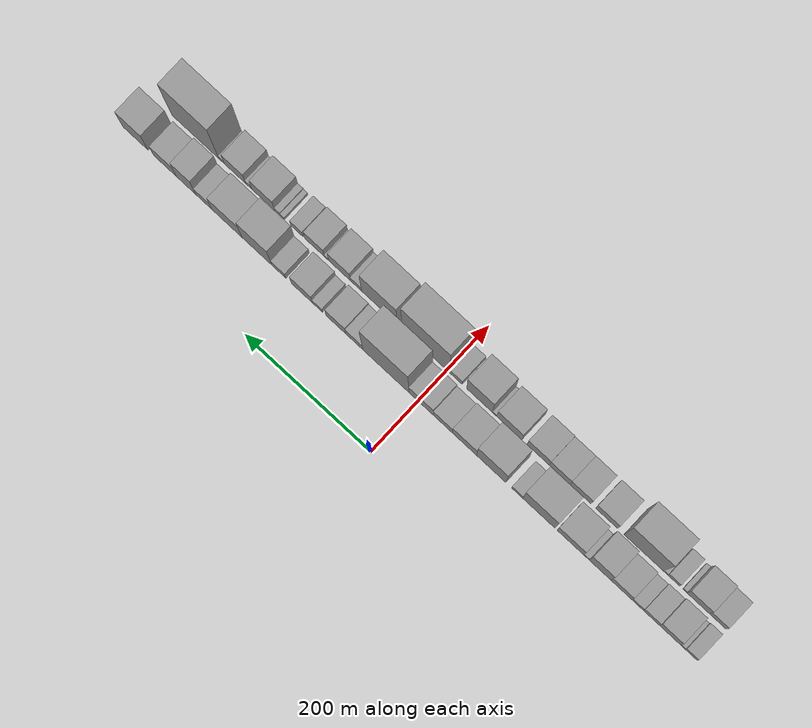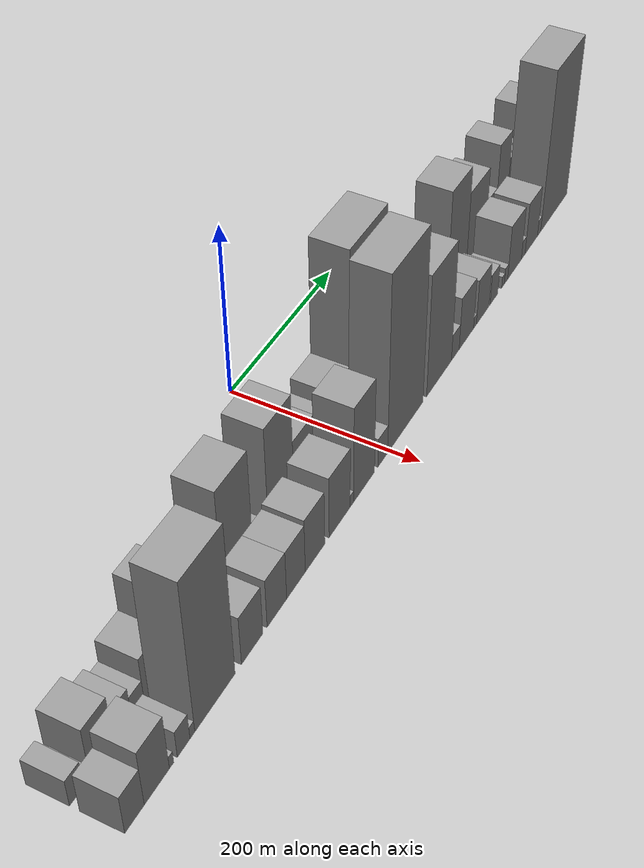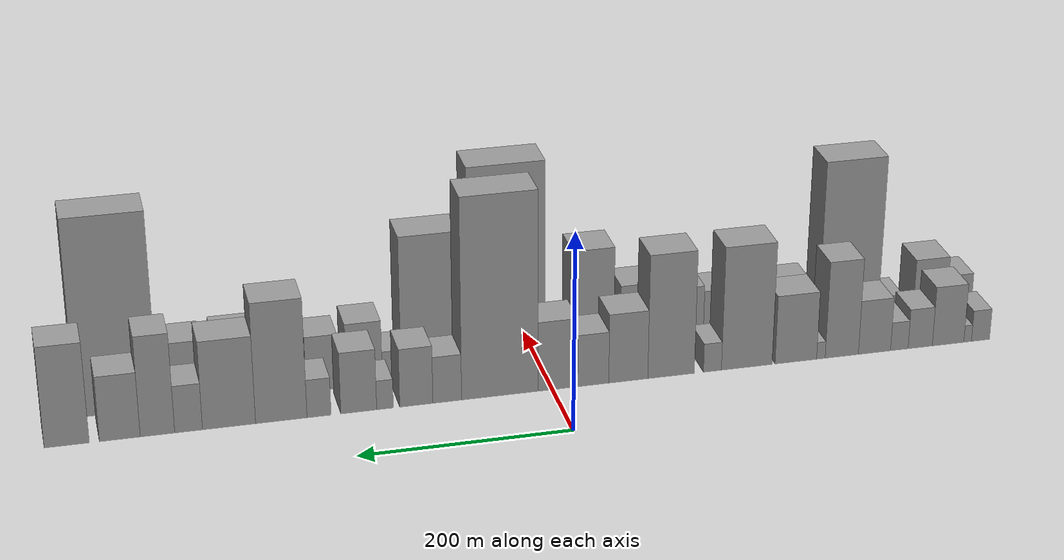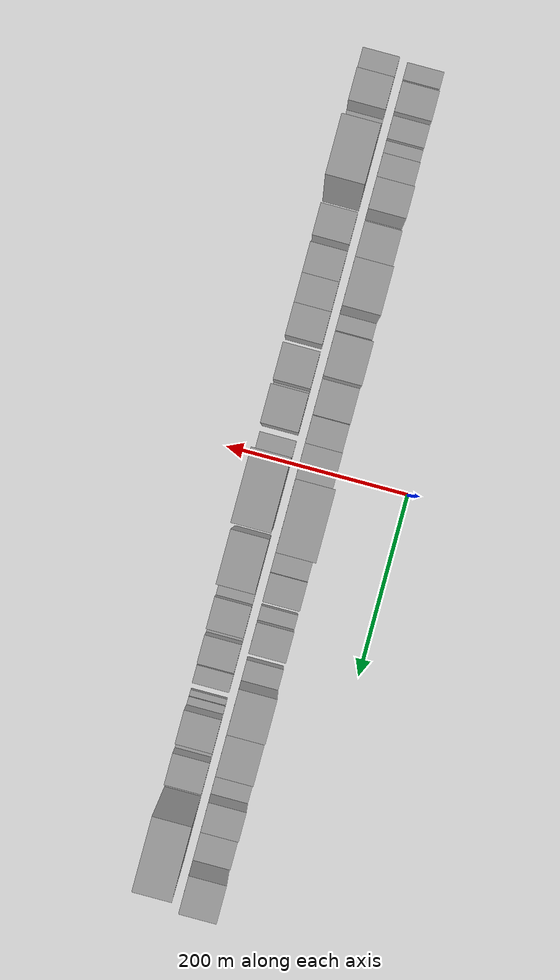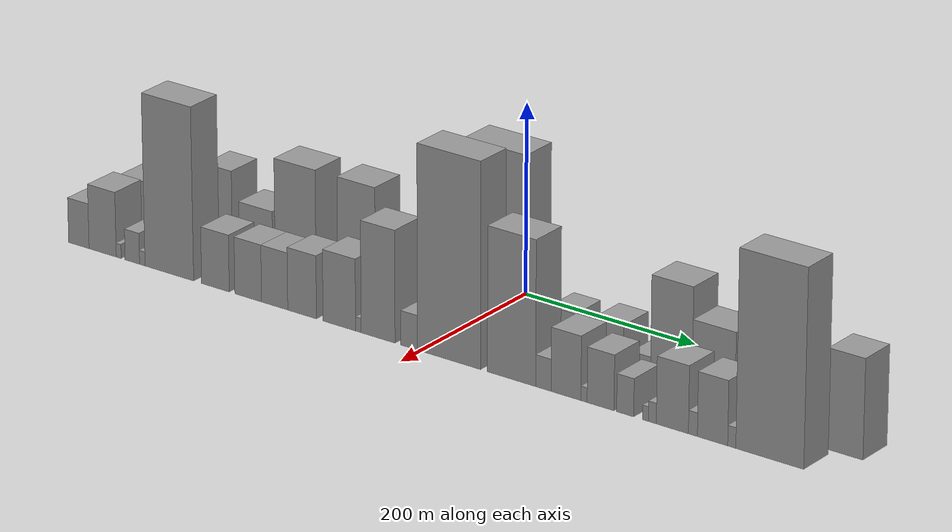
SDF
<sdf version="1.6">
 <world name="default">
  <scene>
   <sky><clouds><speed>12</speed></clouds></sky>
   <ambient>0.4 0.4 0.4 1</ambient>
   <background>0.7 0.7 0.7 1</background>
   <shadows>1</shadows>
  </scene>
  <gravity>0 0 -9.8066</gravity>
  <magnetic_field>6e-06 2.3e-05 -4.2e-05</magnetic_field>
  <physics default="0" name="default_physics" type="ode">
   <ode>
    <solver>
     <type>quick</type>
     <iters>10</iters>
     <sor>1.0</sor>
     <use_dynamic_moi_rescaling>0</use_dynamic_moi_rescaling>
    </solver>
    <constraints>
     <cfm>0</cfm>
     <erp>0.2</erp>
     <contact_max_correcting_vel>100</contact_max_correcting_vel>
     <contact_surface_layer>0.001</contact_surface_layer>
    </constraints>
   </ode>
   <max_step_size>0.004</max_step_size>
   <real_time_factor>1</real_time_factor>
   <real_time_update_rate>250</real_time_update_rate>
  </physics>
  <light name="sun" type="directional">
   <pose>0 0 10 0 0 0</pose>
   <diffuse>0.8 0.8 0.8 1</diffuse>
   <specular>0.2 0.2 0.2 1</specular>
   <attenuation>
    <range>1000</range>
    <constant>0.9</constant>
    <linear>0.01</linear>
    <quadratic>0.001</quadratic>
   </attenuation>
   <direction>-0.5 0.1 -0.9</direction>
  </light>
  <model name="building_1">
   <static>1</static>
   <pose>100.0000 -428.6040 0 0.000000 0.000000 0.000000</pose>
   <link name="link">
    <pose>0 0 16.50 0 0 0</pose>
    <collision name="collision"><geometry><box><size>40.0000 18.7920 33.0000</size></box></geometry></collision>
    <visual name="visual">
     <cast_shadows>0</cast_shadows>
     <geometry><box><size>40.0000 18.7920 33.0000</size></box></geometry>
     <material>
      <script>
       <uri>model://grey_wall/materials/scripts</uri>
       <uri>model://grey_wall/materials/textures</uri>
       <name>vrc/grey_wall</name>
      </script>
     </material>
    </visual>
   </link>
  </model>
  <model name="building_2">
   <static>1</static>
   <pose>100.0000 -415.2792 0 0.000000 0.000000 0.000000</pose>
   <link name="link">
    <pose>0 0 9.00 0 0 0</pose>
    <collision name="collision"><geometry><box><size>40.0000 7.8576 18.0000</size></box></geometry></collision>
    <visual name="visual">
     <cast_shadows>0</cast_shadows>
     <geometry><box><size>40.0000 7.8576 18.0000</size></box></geometry>
     <material>
      <script>
       <uri>model://grey_wall/materials/scripts</uri>
       <uri>model://grey_wall/materials/textures</uri>
       <name>vrc/grey_wall</name>
      </script>
     </material>
    </visual>
   </link>
  </model>
  <model name="building_3">
   <static>1</static>
   <pose>100.0000 -395.0253 0 0.000000 0.000000 0.000000</pose>
   <link name="link">
    <pose>0 0 31.50 0 0 0</pose>
    <collision name="collision"><geometry><box><size>40.0000 32.6501 63.0000</size></box></geometry></collision>
    <visual name="visual">
     <cast_shadows>0</cast_shadows>
     <geometry><box><size>40.0000 32.6501 63.0000</size></box></geometry>
     <material>
      <script>
       <uri>model://grey_wall/materials/scripts</uri>
       <uri>model://grey_wall/materials/textures</uri>
       <name>vrc/grey_wall</name>
      </script>
     </material>
    </visual>
   </link>
  </model>
  <model name="building_4">
   <static>1</static>
   <pose>100.0000 -366.2314 0 0.000000 0.000000 0.000000</pose>
   <link name="link">
    <pose>0 0 21.00 0 0 0</pose>
    <collision name="collision"><geometry><box><size>40.0000 24.9377 42.0000</size></box></geometry></collision>
    <visual name="visual">
     <cast_shadows>0</cast_shadows>
     <geometry><box><size>40.0000 24.9377 42.0000</size></box></geometry>
     <material>
      <script>
       <uri>model://grey_wall/materials/scripts</uri>
       <uri>model://grey_wall/materials/textures</uri>
       <name>vrc/grey_wall</name>
      </script>
     </material>
    </visual>
   </link>
  </model>
  <model name="building_5">
   <static>1</static>
   <pose>100.0000 -344.7753 0 0.000000 0.000000 0.000000</pose>
   <link name="link">
    <pose>0 0 15.00 0 0 0</pose>
    <collision name="collision"><geometry><box><size>40.0000 17.9746 30.0000</size></box></geometry></collision>
    <visual name="visual">
     <cast_shadows>0</cast_shadows>
     <geometry><box><size>40.0000 17.9746 30.0000</size></box></geometry>
     <material>
      <script>
       <uri>model://grey_wall/materials/scripts</uri>
       <uri>model://grey_wall/materials/textures</uri>
       <name>vrc/grey_wall</name>
      </script>
     </material>
    </visual>
   </link>
  </model>
  <model name="building_6">
   <static>1</static>
   <pose>100.0000 -319.3655 0 0.000000 0.000000 0.000000</pose>
   <link name="link">
    <pose>0 0 28.50 0 0 0</pose>
    <collision name="collision"><geometry><box><size>40.0000 32.8450 57.0000</size></box></geometry></collision>
    <visual name="visual">
     <cast_shadows>0</cast_shadows>
     <geometry><box><size>40.0000 32.8450 57.0000</size></box></geometry>
     <material>
      <script>
       <uri>model://grey_wall/materials/scripts</uri>
       <uri>model://grey_wall/materials/textures</uri>
       <name>vrc/grey_wall</name>
      </script>
     </material>
    </visual>
   </link>
  </model>
  <model name="building_7">
   <static>1</static>
   <pose>100.0000 -286.0681 0 0.000000 0.000000 0.000000</pose>
   <link name="link">
    <pose>0 0 51.00 0 0 0</pose>
    <collision name="collision"><geometry><box><size>40.0000 33.7496 102.0000</size></box></geometry></collision>
    <visual name="visual">
     <cast_shadows>0</cast_shadows>
     <geometry><box><size>40.0000 33.7496 102.0000</size></box></geometry>
     <material>
      <script>
       <uri>model://grey_wall/materials/scripts</uri>
       <uri>model://grey_wall/materials/textures</uri>
       <name>vrc/grey_wall</name>
      </script>
     </material>
    </visual>
   </link>
  </model>
  <model name="building_8">
   <static>1</static>
   <pose>100.0000 -264.8809 0 0.000000 0.000000 0.000000</pose>
   <link name="link">
    <pose>0 0 9.00 0 0 0</pose>
    <collision name="collision"><geometry><box><size>40.0000 8.6249 18.0000</size></box></geometry></collision>
    <visual name="visual">
     <cast_shadows>0</cast_shadows>
     <geometry><box><size>40.0000 8.6249 18.0000</size></box></geometry>
     <material>
      <script>
       <uri>model://grey_wall/materials/scripts</uri>
       <uri>model://grey_wall/materials/textures</uri>
       <name>vrc/grey_wall</name>
      </script>
     </material>
    </visual>
   </link>
  </model>
  <model name="building_9">
   <static>1</static>
   <pose>100.0000 -239.6366 0 0.000000 0.000000 0.000000</pose>
   <link name="link">
    <pose>0 0 36.00 0 0 0</pose>
    <collision name="collision"><geometry><box><size>40.0000 41.8636 72.0000</size></box></geometry></collision>
    <visual name="visual">
     <cast_shadows>0</cast_shadows>
     <geometry><box><size>40.0000 41.8636 72.0000</size></box></geometry>
     <material>
      <script>
       <uri>model://grey_wall/materials/scripts</uri>
       <uri>model://grey_wall/materials/textures</uri>
       <name>vrc/grey_wall</name>
      </script>
     </material>
    </visual>
   </link>
  </model>
  <model name="building_10">
   <static>1</static>
   <pose>100.0000 -190.4069 0 0.000000 0.000000 0.000000</pose>
   <link name="link">
    <pose>0 0 64.50 0 0 0</pose>
    <collision name="collision"><geometry><box><size>40.0000 50.5959 129.0000</size></box></geometry></collision>
    <visual name="visual">
     <cast_shadows>0</cast_shadows>
     <geometry><box><size>40.0000 50.5959 129.0000</size></box></geometry>
     <material>
      <script>
       <uri>model://grey_wall/materials/scripts</uri>
       <uri>model://grey_wall/materials/textures</uri>
       <name>vrc/grey_wall</name>
      </script>
     </material>
    </visual>
   </link>
  </model>
  <model name="building_11">
   <static>1</static>
   <pose>100.0000 -156.2125 0 0.000000 0.000000 0.000000</pose>
   <link name="link">
    <pose>0 0 15.00 0 0 0</pose>
    <collision name="collision"><geometry><box><size>40.0000 17.7929 30.0000</size></box></geometry></collision>
    <visual name="visual">
     <cast_shadows>0</cast_shadows>
     <geometry><box><size>40.0000 17.7929 30.0000</size></box></geometry>
     <material>
      <script>
       <uri>model://grey_wall/materials/scripts</uri>
       <uri>model://grey_wall/materials/textures</uri>
       <name>vrc/grey_wall</name>
      </script>
     </material>
    </visual>
   </link>
  </model>
  <model name="building_12">
   <static>1</static>
   <pose>100.0000 -115.3608 0 0.000000 0.000000 0.000000</pose>
   <link name="link">
    <pose>0 0 64.50 0 0 0</pose>
    <collision name="collision"><geometry><box><size>40.0000 45.9103 129.0000</size></box></geometry></collision>
    <visual name="visual">
     <cast_shadows>0</cast_shadows>
     <geometry><box><size>40.0000 45.9103 129.0000</size></box></geometry>
     <material>
      <script>
       <uri>model://grey_wall/materials/scripts</uri>
       <uri>model://grey_wall/materials/textures</uri>
       <name>vrc/grey_wall</name>
      </script>
     </material>
    </visual>
   </link>
  </model>
  <model name="building_13">
   <static>1</static>
   <pose>100.0000 -73.3016 0 0.000000 0.000000 0.000000</pose>
   <link name="link">
    <pose>0 0 36.00 0 0 0</pose>
    <collision name="collision"><geometry><box><size>40.0000 38.2082 72.0000</size></box></geometry></collision>
    <visual name="visual">
     <cast_shadows>0</cast_shadows>
     <geometry><box><size>40.0000 38.2082 72.0000</size></box></geometry>
     <material>
      <script>
       <uri>model://grey_wall/materials/scripts</uri>
       <uri>model://grey_wall/materials/textures</uri>
       <name>vrc/grey_wall</name>
      </script>
     </material>
    </visual>
   </link>
  </model>
  <model name="building_14">
   <static>1</static>
   <pose>100.0000 -39.0240 0 0.000000 0.000000 0.000000</pose>
   <link name="link">
    <pose>0 0 27.00 0 0 0</pose>
    <collision name="collision"><geometry><box><size>40.0000 30.3471 54.0000</size></box></geometry></collision>
    <visual name="visual">
     <cast_shadows>0</cast_shadows>
     <geometry><box><size>40.0000 30.3471 54.0000</size></box></geometry>
     <material>
      <script>
       <uri>model://grey_wall/materials/scripts</uri>
       <uri>model://grey_wall/materials/textures</uri>
       <name>vrc/grey_wall</name>
      </script>
     </material>
    </visual>
   </link>
  </model>
  <model name="building_15">
   <static>1</static>
   <pose>100.0000 -4.7073 0 0.000000 0.000000 0.000000</pose>
   <link name="link">
    <pose>0 0 36.00 0 0 0</pose>
    <collision name="collision"><geometry><box><size>40.0000 38.2862 72.0000</size></box></geometry></collision>
    <visual name="visual">
     <cast_shadows>0</cast_shadows>
     <geometry><box><size>40.0000 38.2862 72.0000</size></box></geometry>
     <material>
      <script>
       <uri>model://grey_wall/materials/scripts</uri>
       <uri>model://grey_wall/materials/textures</uri>
       <name>vrc/grey_wall</name>
      </script>
     </material>
    </visual>
   </link>
  </model>
  <model name="building_16">
   <static>1</static>
   <pose>100.0000 50.9545 0 0.000000 0.000000 0.000000</pose>
   <link name="link">
    <pose>0 0 103.50 0 0 0</pose>
    <collision name="collision"><geometry><box><size>40.0000 73.0374 207.0000</size></box></geometry></collision>
    <visual name="visual">
     <cast_shadows>0</cast_shadows>
     <geometry><box><size>40.0000 73.0374 207.0000</size></box></geometry>
     <material>
      <script>
       <uri>model://grey_wall/materials/scripts</uri>
       <uri>model://grey_wall/materials/textures</uri>
       <name>vrc/grey_wall</name>
      </script>
     </material>
    </visual>
   </link>
  </model>
  <model name="building_17">
   <static>1</static>
   <pose>100.0000 101.1064 0 0.000000 0.000000 0.000000</pose>
   <link name="link">
    <pose>0 0 24.00 0 0 0</pose>
    <collision name="collision"><geometry><box><size>40.0000 27.2664 48.0000</size></box></geometry></collision>
    <visual name="visual">
     <cast_shadows>0</cast_shadows>
     <geometry><box><size>40.0000 27.2664 48.0000</size></box></geometry>
     <material>
      <script>
       <uri>model://grey_wall/materials/scripts</uri>
       <uri>model://grey_wall/materials/textures</uri>
       <name>vrc/grey_wall</name>
      </script>
     </material>
    </visual>
   </link>
  </model>
  <model name="building_18">
   <static>1</static>
   <pose>100.0000 130.3611 0 0.000000 0.000000 0.000000</pose>
   <link name="link">
    <pose>0 0 30.00 0 0 0</pose>
    <collision name="collision"><geometry><box><size>40.0000 31.2430 60.0000</size></box></geometry></collision>
    <visual name="visual">
     <cast_shadows>0</cast_shadows>
     <geometry><box><size>40.0000 31.2430 60.0000</size></box></geometry>
     <material>
      <script>
       <uri>model://grey_wall/materials/scripts</uri>
       <uri>model://grey_wall/materials/textures</uri>
       <name>vrc/grey_wall</name>
      </script>
     </material>
    </visual>
   </link>
  </model>
  <model name="building_19">
   <static>1</static>
   <pose>100.0000 159.8298 0 0.000000 0.000000 0.000000</pose>
   <link name="link">
    <pose>0 0 15.00 0 0 0</pose>
    <collision name="collision"><geometry><box><size>40.0000 15.6944 30.0000</size></box></geometry></collision>
    <visual name="visual">
     <cast_shadows>0</cast_shadows>
     <geometry><box><size>40.0000 15.6944 30.0000</size></box></geometry>
     <material>
      <script>
       <uri>model://grey_wall/materials/scripts</uri>
       <uri>model://grey_wall/materials/textures</uri>
       <name>vrc/grey_wall</name>
      </script>
     </material>
    </visual>
   </link>
  </model>
  <model name="building_20">
   <static>1</static>
   <pose>100.0000 184.4325 0 0.000000 0.000000 0.000000</pose>
   <link name="link">
    <pose>0 0 31.50 0 0 0</pose>
    <collision name="collision"><geometry><box><size>40.0000 33.5111 63.0000</size></box></geometry></collision>
    <visual name="visual">
     <cast_shadows>0</cast_shadows>
     <geometry><box><size>40.0000 33.5111 63.0000</size></box></geometry>
     <material>
      <script>
       <uri>model://grey_wall/materials/scripts</uri>
       <uri>model://grey_wall/materials/textures</uri>
       <name>vrc/grey_wall</name>
      </script>
     </material>
    </visual>
   </link>
  </model>
  <model name="building_21">
   <static>1</static>
   <pose>100.0000 221.3732 0 0.000000 0.000000 0.000000</pose>
   <link name="link">
    <pose>0 0 19.50 0 0 0</pose>
    <collision name="collision"><geometry><box><size>40.0000 22.3703 39.0000</size></box></geometry></collision>
    <visual name="visual">
     <cast_shadows>0</cast_shadows>
     <geometry><box><size>40.0000 22.3703 39.0000</size></box></geometry>
     <material>
      <script>
       <uri>model://grey_wall/materials/scripts</uri>
       <uri>model://grey_wall/materials/textures</uri>
       <name>vrc/grey_wall</name>
      </script>
     </material>
    </visual>
   </link>
  </model>
  <model name="building_22">
   <static>1</static>
   <pose>100.0000 256.2838 0 0.000000 0.000000 0.000000</pose>
   <link name="link">
    <pose>0 0 61.50 0 0 0</pose>
    <collision name="collision"><geometry><box><size>40.0000 47.4509 123.0000</size></box></geometry></collision>
    <visual name="visual">
     <cast_shadows>0</cast_shadows>
     <geometry><box><size>40.0000 47.4509 123.0000</size></box></geometry>
     <material>
      <script>
       <uri>model://grey_wall/materials/scripts</uri>
       <uri>model://grey_wall/materials/textures</uri>
       <name>vrc/grey_wall</name>
      </script>
     </material>
    </visual>
   </link>
  </model>
  <model name="building_23">
   <static>1</static>
   <pose>100.0000 304.2773 0 0.000000 0.000000 0.000000</pose>
   <link name="link">
    <pose>0 0 45.00 0 0 0</pose>
    <collision name="collision"><geometry><box><size>40.0000 48.5361 90.0000</size></box></geometry></collision>
    <visual name="visual">
     <cast_shadows>0</cast_shadows>
     <geometry><box><size>40.0000 48.5361 90.0000</size></box></geometry>
     <material>
      <script>
       <uri>model://grey_wall/materials/scripts</uri>
       <uri>model://grey_wall/materials/textures</uri>
       <name>vrc/grey_wall</name>
      </script>
     </material>
    </visual>
   </link>
  </model>
  <model name="building_24">
   <static>1</static>
   <pose>100.0000 341.1496 0 0.000000 0.000000 0.000000</pose>
   <link name="link">
    <pose>0 0 24.00 0 0 0</pose>
    <collision name="collision"><geometry><box><size>40.0000 25.2085 48.0000</size></box></geometry></collision>
    <visual name="visual">
     <cast_shadows>0</cast_shadows>
     <geometry><box><size>40.0000 25.2085 48.0000</size></box></geometry>
     <material>
      <script>
       <uri>model://grey_wall/materials/scripts</uri>
       <uri>model://grey_wall/materials/textures</uri>
       <name>vrc/grey_wall</name>
      </script>
     </material>
    </visual>
   </link>
  </model>
  <model name="building_25">
   <static>1</static>
   <pose>100.0000 369.3502 0 0.000000 0.000000 0.000000</pose>
   <link name="link">
    <pose>0 0 51.00 0 0 0</pose>
    <collision name="collision"><geometry><box><size>40.0000 31.1926 102.0000</size></box></geometry></collision>
    <visual name="visual">
     <cast_shadows>0</cast_shadows>
     <geometry><box><size>40.0000 31.1926 102.0000</size></box></geometry>
     <material>
      <script>
       <uri>model://grey_wall/materials/scripts</uri>
       <uri>model://grey_wall/materials/textures</uri>
       <name>vrc/grey_wall</name>
      </script>
     </material>
    </visual>
   </link>
  </model>
  <model name="building_26">
   <static>1</static>
   <pose>100.0000 403.3095 0 0.000000 0.000000 0.000000</pose>
   <link name="link">
    <pose>0 0 33.00 0 0 0</pose>
    <collision name="collision"><geometry><box><size>40.0000 36.7261 66.0000</size></box></geometry></collision>
    <visual name="visual">
     <cast_shadows>0</cast_shadows>
     <geometry><box><size>40.0000 36.7261 66.0000</size></box></geometry>
     <material>
      <script>
       <uri>model://grey_wall/materials/scripts</uri>
       <uri>model://grey_wall/materials/textures</uri>
       <name>vrc/grey_wall</name>
      </script>
     </material>
    </visual>
   </link>
  </model>
  <model name="building_27">
   <static>1</static>
   <pose>100.0000 450.7892 0 0.000000 0.000000 0.000000</pose>
   <link name="link">
    <pose>0 0 51.00 0 0 0</pose>
    <collision name="collision"><geometry><box><size>40.0000 40.2333 102.0000</size></box></geometry></collision>
    <visual name="visual">
     <cast_shadows>0</cast_shadows>
     <geometry><box><size>40.0000 40.2333 102.0000</size></box></geometry>
     <material>
      <script>
       <uri>model://grey_wall/materials/scripts</uri>
       <uri>model://grey_wall/materials/textures</uri>
       <name>vrc/grey_wall</name>
      </script>
     </material>
    </visual>
   </link>
  </model>
  <model name="building_28">
   <static>1</static>
   <pose>149.0000 -424.8839 0 0.000000 0.000000 0.000000</pose>
   <link name="link">
    <pose>0 0 24.00 0 0 0</pose>
    <collision name="collision"><geometry><box><size>40.0000 26.2322 48.0000</size></box></geometry></collision>
    <visual name="visual">
     <cast_shadows>0</cast_shadows>
     <geometry><box><size>40.0000 26.2322 48.0000</size></box></geometry>
     <material>
      <script>
       <uri>model://grey_wall/materials/scripts</uri>
       <uri>model://grey_wall/materials/textures</uri>
       <name>vrc/grey_wall</name>
      </script>
     </material>
    </visual>
   </link>
  </model>
  <model name="building_29">
   <static>1</static>
   <pose>149.0000 -394.2897 0 0.000000 0.000000 0.000000</pose>
   <link name="link">
    <pose>0 0 34.50 0 0 0</pose>
    <collision name="collision"><geometry><box><size>40.0000 34.9562 69.0000</size></box></geometry></collision>
    <visual name="visual">
     <cast_shadows>0</cast_shadows>
     <geometry><box><size>40.0000 34.9562 69.0000</size></box></geometry>
     <material>
      <script>
       <uri>model://grey_wall/materials/scripts</uri>
       <uri>model://grey_wall/materials/textures</uri>
       <name>vrc/grey_wall</name>
      </script>
     </material>
    </visual>
   </link>
  </model>
  <model name="building_30">
   <static>1</static>
   <pose>149.0000 -373.6781 0 0.000000 0.000000 0.000000</pose>
   <link name="link">
    <pose>0 0 7.50 0 0 0</pose>
    <collision name="collision"><geometry><box><size>40.0000 6.2671 15.0000</size></box></geometry></collision>
    <visual name="visual">
     <cast_shadows>0</cast_shadows>
     <geometry><box><size>40.0000 6.2671 15.0000</size></box></geometry>
     <material>
      <script>
       <uri>model://grey_wall/materials/scripts</uri>
       <uri>model://grey_wall/materials/textures</uri>
       <name>vrc/grey_wall</name>
      </script>
     </material>
    </visual>
   </link>
  </model>
  <model name="building_31">
   <static>1</static>
   <pose>149.0000 -356.3457 0 0.000000 0.000000 0.000000</pose>
   <link name="link">
    <pose>0 0 16.50 0 0 0</pose>
    <collision name="collision"><geometry><box><size>40.0000 18.3976 33.0000</size></box></geometry></collision>
    <visual name="visual">
     <cast_shadows>0</cast_shadows>
     <geometry><box><size>40.0000 18.3976 33.0000</size></box></geometry>
     <material>
      <script>
       <uri>model://grey_wall/materials/scripts</uri>
       <uri>model://grey_wall/materials/textures</uri>
       <name>vrc/grey_wall</name>
      </script>
     </material>
    </visual>
   </link>
  </model>
  <model name="building_32">
   <static>1</static>
   <pose>149.0000 -343.6313 0 0.000000 0.000000 0.000000</pose>
   <link name="link">
    <pose>0 0 7.50 0 0 0</pose>
    <collision name="collision"><geometry><box><size>40.0000 7.0311 15.0000</size></box></geometry></collision>
    <visual name="visual">
     <cast_shadows>0</cast_shadows>
     <geometry><box><size>40.0000 7.0311 15.0000</size></box></geometry>
     <material>
      <script>
       <uri>model://grey_wall/materials/scripts</uri>
       <uri>model://grey_wall/materials/textures</uri>
       <name>vrc/grey_wall</name>
      </script>
     </material>
    </visual>
   </link>
  </model>
  <model name="building_33">
   <static>1</static>
   <pose>149.0000 -309.3926 0 0.000000 0.000000 0.000000</pose>
   <link name="link">
    <pose>0 0 91.50 0 0 0</pose>
    <collision name="collision"><geometry><box><size>40.0000 61.4463 183.0000</size></box></geometry></collision>
    <visual name="visual">
     <cast_shadows>0</cast_shadows>
     <geometry><box><size>40.0000 61.4463 183.0000</size></box></geometry>
     <material>
      <script>
       <uri>model://grey_wall/materials/scripts</uri>
       <uri>model://grey_wall/materials/textures</uri>
       <name>vrc/grey_wall</name>
      </script>
     </material>
    </visual>
   </link>
  </model>
  <model name="building_34">
   <static>1</static>
   <pose>149.0000 -251.3456 0 0.000000 0.000000 0.000000</pose>
   <link name="link">
    <pose>0 0 30.00 0 0 0</pose>
    <collision name="collision"><geometry><box><size>40.0000 34.6478 60.0000</size></box></geometry></collision>
    <visual name="visual">
     <cast_shadows>0</cast_shadows>
     <geometry><box><size>40.0000 34.6478 60.0000</size></box></geometry>
     <material>
      <script>
       <uri>model://grey_wall/materials/scripts</uri>
       <uri>model://grey_wall/materials/textures</uri>
       <name>vrc/grey_wall</name>
      </script>
     </material>
    </visual>
   </link>
  </model>
  <model name="building_35">
   <static>1</static>
   <pose>149.0000 -210.4930 0 0.000000 0.000000 0.000000</pose>
   <link name="link">
    <pose>0 0 30.00 0 0 0</pose>
    <collision name="collision"><geometry><box><size>40.0000 33.0572 60.0000</size></box></geometry></collision>
    <visual name="visual">
     <cast_shadows>0</cast_shadows>
     <geometry><box><size>40.0000 33.0572 60.0000</size></box></geometry>
     <material>
      <script>
       <uri>model://grey_wall/materials/scripts</uri>
       <uri>model://grey_wall/materials/textures</uri>
       <name>vrc/grey_wall</name>
      </script>
     </material>
    </visual>
   </link>
  </model>
  <model name="building_36">
   <static>1</static>
   <pose>149.0000 -177.7539 0 0.000000 0.000000 0.000000</pose>
   <link name="link">
    <pose>0 0 30.00 0 0 0</pose>
    <collision name="collision"><geometry><box><size>40.0000 32.4210 60.0000</size></box></geometry></collision>
    <visual name="visual">
     <cast_shadows>0</cast_shadows>
     <geometry><box><size>40.0000 32.4210 60.0000</size></box></geometry>
     <material>
      <script>
       <uri>model://grey_wall/materials/scripts</uri>
       <uri>model://grey_wall/materials/textures</uri>
       <name>vrc/grey_wall</name>
      </script>
     </material>
    </visual>
   </link>
  </model>
  <model name="building_37">
   <static>1</static>
   <pose>149.0000 -143.9189 0 0.000000 0.000000 0.000000</pose>
   <link name="link">
    <pose>0 0 33.00 0 0 0</pose>
    <collision name="collision"><geometry><box><size>40.0000 35.2490 66.0000</size></box></geometry></collision>
    <visual name="visual">
     <cast_shadows>0</cast_shadows>
     <geometry><box><size>40.0000 35.2490 66.0000</size></box></geometry>
     <material>
      <script>
       <uri>model://grey_wall/materials/scripts</uri>
       <uri>model://grey_wall/materials/textures</uri>
       <name>vrc/grey_wall</name>
      </script>
     </material>
    </visual>
   </link>
  </model>
  <model name="building_38">
   <static>1</static>
   <pose>149.0000 -98.4647 0 0.000000 0.000000 0.000000</pose>
   <link name="link">
    <pose>0 0 37.50 0 0 0</pose>
    <collision name="collision"><geometry><box><size>40.0000 39.6595 75.0000</size></box></geometry></collision>
    <visual name="visual">
     <cast_shadows>0</cast_shadows>
     <geometry><box><size>40.0000 39.6595 75.0000</size></box></geometry>
     <material>
      <script>
       <uri>model://grey_wall/materials/scripts</uri>
       <uri>model://grey_wall/materials/textures</uri>
       <name>vrc/grey_wall</name>
      </script>
     </material>
    </visual>
   </link>
  </model>
  <model name="building_39">
   <static>1</static>
   <pose>149.0000 -75.2863 0 0.000000 0.000000 0.000000</pose>
   <link name="link">
    <pose>0 0 7.50 0 0 0</pose>
    <collision name="collision"><geometry><box><size>40.0000 6.6972 15.0000</size></box></geometry></collision>
    <visual name="visual">
     <cast_shadows>0</cast_shadows>
     <geometry><box><size>40.0000 6.6972 15.0000</size></box></geometry>
     <material>
      <script>
       <uri>model://grey_wall/materials/scripts</uri>
       <uri>model://grey_wall/materials/textures</uri>
       <name>vrc/grey_wall</name>
      </script>
     </material>
    </visual>
   </link>
  </model>
  <model name="building_40">
   <static>1</static>
   <pose>149.0000 -51.4730 0 0.000000 0.000000 0.000000</pose>
   <link name="link">
    <pose>0 0 58.50 0 0 0</pose>
    <collision name="collision"><geometry><box><size>40.0000 40.9293 117.0000</size></box></geometry></collision>
    <visual name="visual">
     <cast_shadows>0</cast_shadows>
     <geometry><box><size>40.0000 40.9293 117.0000</size></box></geometry>
     <material>
      <script>
       <uri>model://grey_wall/materials/scripts</uri>
       <uri>model://grey_wall/materials/textures</uri>
       <name>vrc/grey_wall</name>
      </script>
     </material>
    </visual>
   </link>
  </model>
  <model name="building_41">
   <static>1</static>
   <pose>149.0000 -14.0813 0 0.000000 0.000000 0.000000</pose>
   <link name="link">
    <pose>0 0 18.00 0 0 0</pose>
    <collision name="collision"><geometry><box><size>40.0000 19.8541 36.0000</size></box></geometry></collision>
    <visual name="visual">
     <cast_shadows>0</cast_shadows>
     <geometry><box><size>40.0000 19.8541 36.0000</size></box></geometry>
     <material>
      <script>
       <uri>model://grey_wall/materials/scripts</uri>
       <uri>model://grey_wall/materials/textures</uri>
       <name>vrc/grey_wall</name>
      </script>
     </material>
    </visual>
   </link>
  </model>
  <model name="building_42">
   <static>1</static>
   <pose>149.0000 33.3539 0 0.000000 0.000000 0.000000</pose>
   <link name="link">
    <pose>0 0 106.50 0 0 0</pose>
    <collision name="collision"><geometry><box><size>40.0000 75.0163 213.0000</size></box></geometry></collision>
    <visual name="visual">
     <cast_shadows>0</cast_shadows>
     <geometry><box><size>40.0000 75.0163 213.0000</size></box></geometry>
     <material>
      <script>
       <uri>model://grey_wall/materials/scripts</uri>
       <uri>model://grey_wall/materials/textures</uri>
       <name>vrc/grey_wall</name>
      </script>
     </material>
    </visual>
   </link>
  </model>
  <model name="building_43">
   <static>1</static>
   <pose>149.0000 107.0798 0 0.000000 0.000000 0.000000</pose>
   <link name="link">
    <pose>0 0 75.00 0 0 0</pose>
    <collision name="collision"><geometry><box><size>40.0000 56.4356 150.0000</size></box></geometry></collision>
    <visual name="visual">
     <cast_shadows>0</cast_shadows>
     <geometry><box><size>40.0000 56.4356 150.0000</size></box></geometry>
     <material>
      <script>
       <uri>model://grey_wall/materials/scripts</uri>
       <uri>model://grey_wall/materials/textures</uri>
       <name>vrc/grey_wall</name>
      </script>
     </material>
    </visual>
   </link>
  </model>
  <model name="building_44">
   <static>1</static>
   <pose>149.0000 144.3240 0 0.000000 0.000000 0.000000</pose>
   <link name="link">
    <pose>0 0 16.50 0 0 0</pose>
    <collision name="collision"><geometry><box><size>40.0000 18.0528 33.0000</size></box></geometry></collision>
    <visual name="visual">
     <cast_shadows>0</cast_shadows>
     <geometry><box><size>40.0000 18.0528 33.0000</size></box></geometry>
     <material>
      <script>
       <uri>model://grey_wall/materials/scripts</uri>
       <uri>model://grey_wall/materials/textures</uri>
       <name>vrc/grey_wall</name>
      </script>
     </material>
    </visual>
   </link>
  </model>
  <model name="building_45">
   <static>1</static>
   <pose>149.0000 170.5676 0 0.000000 0.000000 0.000000</pose>
   <link name="link">
    <pose>0 0 33.00 0 0 0</pose>
    <collision name="collision"><geometry><box><size>40.0000 34.4344 66.0000</size></box></geometry></collision>
    <visual name="visual">
     <cast_shadows>0</cast_shadows>
     <geometry><box><size>40.0000 34.4344 66.0000</size></box></geometry>
     <material>
      <script>
       <uri>model://grey_wall/materials/scripts</uri>
       <uri>model://grey_wall/materials/textures</uri>
       <name>vrc/grey_wall</name>
      </script>
     </material>
    </visual>
   </link>
  </model>
  <model name="building_46">
   <static>1</static>
   <pose>149.0000 191.3501 0 0.000000 0.000000 0.000000</pose>
   <link name="link">
    <pose>0 0 7.50 0 0 0</pose>
    <collision name="collision"><geometry><box><size>40.0000 7.1306 15.0000</size></box></geometry></collision>
    <visual name="visual">
     <cast_shadows>0</cast_shadows>
     <geometry><box><size>40.0000 7.1306 15.0000</size></box></geometry>
     <material>
      <script>
       <uri>model://grey_wall/materials/scripts</uri>
       <uri>model://grey_wall/materials/textures</uri>
       <name>vrc/grey_wall</name>
      </script>
     </material>
    </visual>
   </link>
  </model>
  <model name="building_47">
   <static>1</static>
   <pose>149.0000 210.3909 0 0.000000 0.000000 0.000000</pose>
   <link name="link">
    <pose>0 0 28.50 0 0 0</pose>
    <collision name="collision"><geometry><box><size>40.0000 30.9511 57.0000</size></box></geometry></collision>
    <visual name="visual">
     <cast_shadows>0</cast_shadows>
     <geometry><box><size>40.0000 30.9511 57.0000</size></box></geometry>
     <material>
      <script>
       <uri>model://grey_wall/materials/scripts</uri>
       <uri>model://grey_wall/materials/textures</uri>
       <name>vrc/grey_wall</name>
      </script>
     </material>
    </visual>
   </link>
  </model>
  <model name="building_48">
   <static>1</static>
   <pose>149.0000 238.6235 0 0.000000 0.000000 0.000000</pose>
   <link name="link">
    <pose>0 0 19.50 0 0 0</pose>
    <collision name="collision"><geometry><box><size>40.0000 19.5142 39.0000</size></box></geometry></collision>
    <visual name="visual">
     <cast_shadows>0</cast_shadows>
     <geometry><box><size>40.0000 19.5142 39.0000</size></box></geometry>
     <material>
      <script>
       <uri>model://grey_wall/materials/scripts</uri>
       <uri>model://grey_wall/materials/textures</uri>
       <name>vrc/grey_wall</name>
      </script>
     </material>
    </visual>
   </link>
  </model>
  <model name="building_49">
   <static>1</static>
   <pose>149.0000 261.7790 0 0.000000 0.000000 0.000000</pose>
   <link name="link">
    <pose>0 0 7.50 0 0 0</pose>
    <collision name="collision"><geometry><box><size>40.0000 6.7967 15.0000</size></box></geometry></collision>
    <visual name="visual">
     <cast_shadows>0</cast_shadows>
     <geometry><box><size>40.0000 6.7967 15.0000</size></box></geometry>
     <material>
      <script>
       <uri>model://grey_wall/materials/scripts</uri>
       <uri>model://grey_wall/materials/textures</uri>
       <name>vrc/grey_wall</name>
      </script>
     </material>
    </visual>
   </link>
  </model>
  <model name="building_50">
   <static>1</static>
   <pose>149.0000 269.6223 0 0.000000 0.000000 0.000000</pose>
   <link name="link">
    <pose>0 0 10.50 0 0 0</pose>
    <collision name="collision"><geometry><box><size>40.0000 8.8899 21.0000</size></box></geometry></collision>
    <visual name="visual">
     <cast_shadows>0</cast_shadows>
     <geometry><box><size>40.0000 8.8899 21.0000</size></box></geometry>
     <material>
      <script>
       <uri>model://grey_wall/materials/scripts</uri>
       <uri>model://grey_wall/materials/textures</uri>
       <name>vrc/grey_wall</name>
      </script>
     </material>
    </visual>
   </link>
  </model>
  <model name="building_51">
   <static>1</static>
   <pose>149.0000 292.2231 0 0.000000 0.000000 0.000000</pose>
   <link name="link">
    <pose>0 0 34.50 0 0 0</pose>
    <collision name="collision"><geometry><box><size>40.0000 36.3117 69.0000</size></box></geometry></collision>
    <visual name="visual">
     <cast_shadows>0</cast_shadows>
     <geometry><box><size>40.0000 36.3117 69.0000</size></box></geometry>
     <material>
      <script>
       <uri>model://grey_wall/materials/scripts</uri>
       <uri>model://grey_wall/materials/textures</uri>
       <name>vrc/grey_wall</name>
      </script>
     </material>
    </visual>
   </link>
  </model>
  <model name="building_52">
   <static>1</static>
   <pose>149.0000 315.4220 0 0.000000 0.000000 0.000000</pose>
   <link name="link">
    <pose>0 0 12.00 0 0 0</pose>
    <collision name="collision"><geometry><box><size>40.0000 10.0861 24.0000</size></box></geometry></collision>
    <visual name="visual">
     <cast_shadows>0</cast_shadows>
     <geometry><box><size>40.0000 10.0861 24.0000</size></box></geometry>
     <material>
      <script>
       <uri>model://grey_wall/materials/scripts</uri>
       <uri>model://grey_wall/materials/textures</uri>
       <name>vrc/grey_wall</name>
      </script>
     </material>
    </visual>
   </link>
  </model>
  <model name="building_53">
   <static>1</static>
   <pose>149.0000 337.4482 0 0.000000 0.000000 0.000000</pose>
   <link name="link">
    <pose>0 0 33.00 0 0 0</pose>
    <collision name="collision"><geometry><box><size>40.0000 33.9662 66.0000</size></box></geometry></collision>
    <visual name="visual">
     <cast_shadows>0</cast_shadows>
     <geometry><box><size>40.0000 33.9662 66.0000</size></box></geometry>
     <material>
      <script>
       <uri>model://grey_wall/materials/scripts</uri>
       <uri>model://grey_wall/materials/textures</uri>
       <name>vrc/grey_wall</name>
      </script>
     </material>
    </visual>
   </link>
  </model>
  <model name="building_54">
   <static>1</static>
   <pose>149.0000 358.9550 0 0.000000 0.000000 0.000000</pose>
   <link name="link">
    <pose>0 0 10.50 0 0 0</pose>
    <collision name="collision"><geometry><box><size>40.0000 9.0474 21.0000</size></box></geometry></collision>
    <visual name="visual">
     <cast_shadows>0</cast_shadows>
     <geometry><box><size>40.0000 9.0474 21.0000</size></box></geometry>
     <material>
      <script>
       <uri>model://grey_wall/materials/scripts</uri>
       <uri>model://grey_wall/materials/textures</uri>
       <name>vrc/grey_wall</name>
      </script>
     </material>
    </visual>
   </link>
  </model>
  <model name="building_55">
   <static>1</static>
   <pose>149.0000 401.1065 0 0.000000 0.000000 0.000000</pose>
   <link name="link">
    <pose>0 0 100.50 0 0 0</pose>
    <collision name="collision"><geometry><box><size>40.0000 75.2556 201.0000</size></box></geometry></collision>
    <visual name="visual">
     <cast_shadows>0</cast_shadows>
     <geometry><box><size>40.0000 75.2556 201.0000</size></box></geometry>
     <material>
      <script>
       <uri>model://grey_wall/materials/scripts</uri>
       <uri>model://grey_wall/materials/textures</uri>
       <name>vrc/grey_wall</name>
      </script>
     </material>
    </visual>
   </link>
  </model>
 </world>
</sdf>
